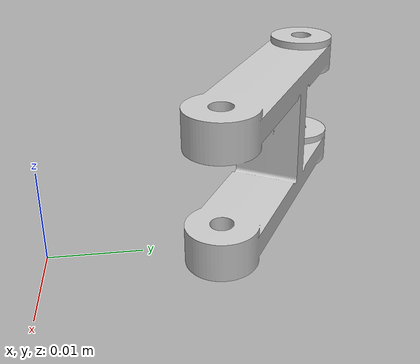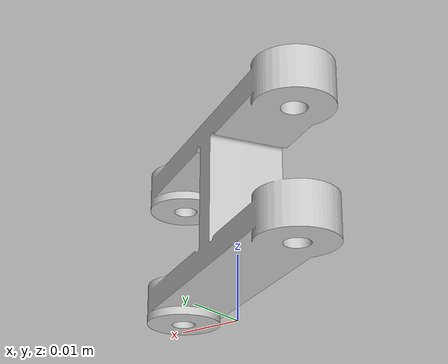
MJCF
<mujoco model="gripper_left2">
  <default>
    <default class="visual">
      <geom group="1" type="mesh" contype="0" conaffinity="0"/>
    </default>
    <default class="collision">
      <geom group="0" type="mesh"/>
    </default>
  </default>
  <asset>
    <material name="material_0" specular="0.0" shininess="0.0" rgba="0.800000 0.800000 0.800000 1.000000"/>
    <mesh file="gripper_left2.obj"/>
  </asset>
  <worldbody>
    <body name="gripper_left2">
      <geom material="material_0" mesh="gripper_left2" class="visual"/>
      <geom mesh="gripper_left2" class="collision"/>
    </body>
  </worldbody>
</mujoco>
